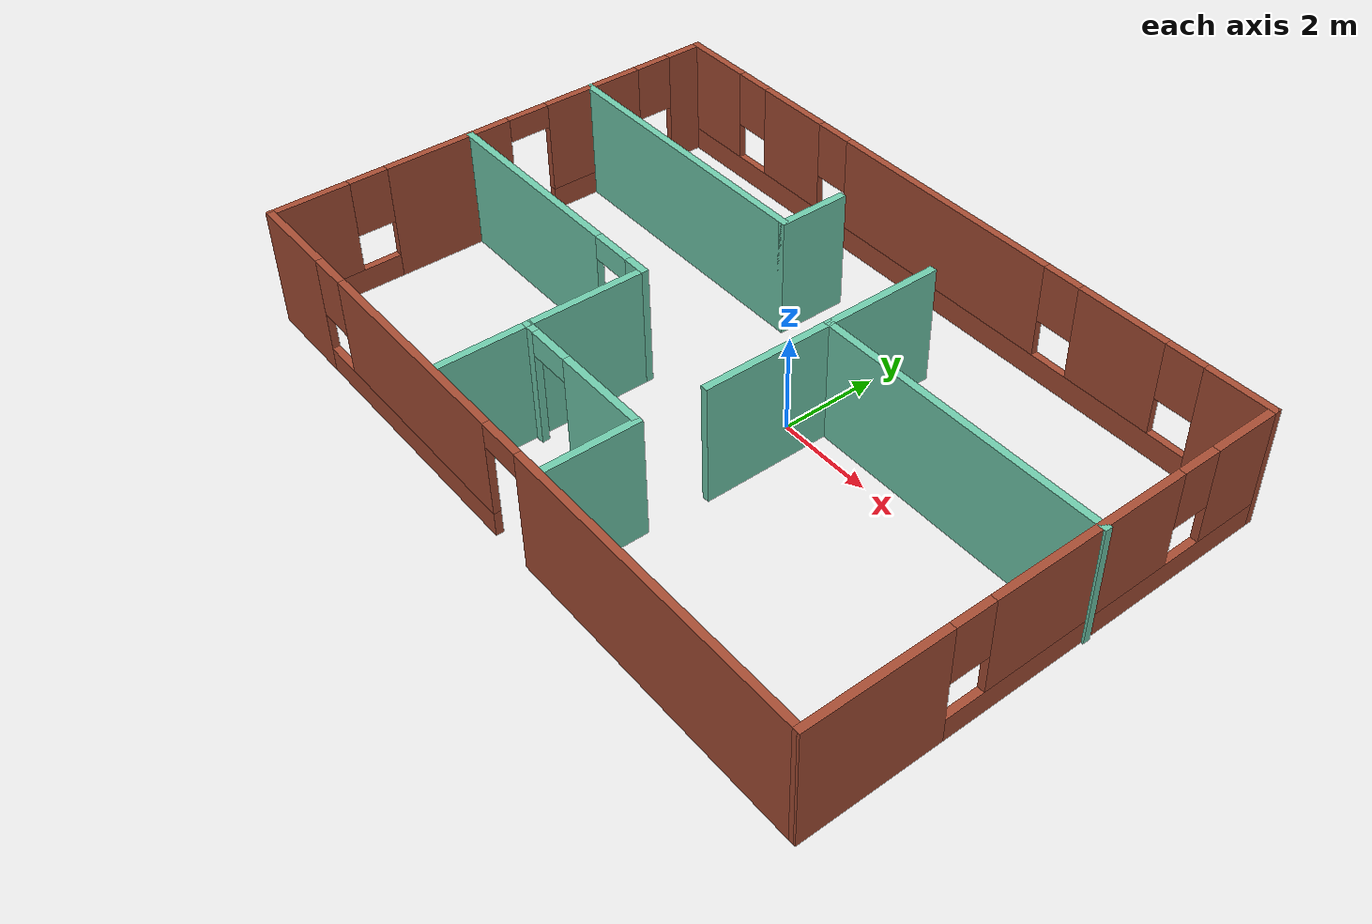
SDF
<?xml version='1.0'?>
<sdf version='1.6'>
  <model name='buildingV1'>
    <pose frame=''>-0.82447 -0.485176 0 0 -0 0</pose>
    <link name='Wall_22'>
      <pose frame=''>-7.44478 0 0 0 0 -1.57075</pose>
      <visual name='Wall_22_Visual_0'>
        <pose frame=''>-4.55966 0 1.25 0 -0 0</pose>
        <geometry>
          <box>
            <size>0.881202 0.15 2.5</size>
          </box>
        </geometry>
        <material>
          <script>
            <uri>file://media/materials/scripts/gazebo.material</uri>
            <name>Gazebo/Bricks</name>
          </script>
          <ambient>0.435294 0.796078 0.67451 1</ambient>
        </material>
        <meta>
          <layer>0</layer>
        </meta>
      </visual>
      <collision name='Wall_22_Collision_0'>
        <geometry>
          <box>
            <size>0.881202 0.15 2.5</size>
          </box>
        </geometry>
        <pose frame=''>-4.55966 0 1.25 0 -0 0</pose>
      </collision>
      <visual name='Wall_22_Visual_1'>
        <pose frame=''>1.18623 0 1.25 0 -0 0</pose>
        <geometry>
          <box>
            <size>2.73935 0.15 2.5</size>
          </box>
        </geometry>
        <material>
          <script>
            <uri>file://media/materials/scripts/gazebo.material</uri>
            <name>Gazebo/Bricks</name>
          </script>
          <ambient>0.435294 0.796078 0.67451 1</ambient>
        </material>
        <meta>
          <layer>0</layer>
        </meta>
      </visual>
      <collision name='Wall_22_Collision_1'>
        <geometry>
          <box>
            <size>2.73935 0.15 2.5</size>
          </box>
        </geometry>
        <pose frame=''>1.18623 0 1.25 0 -0 0</pose>
      </collision>
      <visual name='Wall_22_Visual_2'>
        <pose frame=''>-2.60125 0 0.25 0 -0 0</pose>
        <geometry>
          <box>
            <size>3.03561 0.15 0.5</size>
          </box>
        </geometry>
        <material>
          <script>
            <uri>file://media/materials/scripts/gazebo.material</uri>
            <name>Gazebo/Bricks</name>
          </script>
          <ambient>0.435294 0.796078 0.67451 1</ambient>
        </material>
        <meta>
          <layer>0</layer>
        </meta>
      </visual>
      <collision name='Wall_22_Collision_2'>
        <geometry>
          <box>
            <size>3.03561 0.15 0.5</size>
          </box>
        </geometry>
        <pose frame=''>-2.60125 0 0.25 0 -0 0</pose>
      </collision>
      <visual name='Wall_22_Visual_3'>
        <pose frame=''>3.77808 0 0.25 0 -0 0</pose>
        <geometry>
          <box>
            <size>2.44435 0.15 0.5</size>
          </box>
        </geometry>
        <material>
          <script>
            <uri>file://media/materials/scripts/gazebo.material</uri>
            <name>Gazebo/Bricks</name>
          </script>
          <ambient>0.435294 0.796078 0.67451 1</ambient>
        </material>
        <meta>
          <layer>0</layer>
        </meta>
      </visual>
      <collision name='Wall_22_Collision_3'>
        <geometry>
          <box>
            <size>2.44435 0.15 0.5</size>
          </box>
        </geometry>
        <pose frame=''>3.77808 0 0.25 0 -0 0</pose>
      </collision>
      <visual name='Wall_22_Visual_4'>
        <pose frame=''>-2.20125 0 1.5 0 -0 0</pose>
        <geometry>
          <box>
            <size>2.23561 0.15 2</size>
          </box>
        </geometry>
        <material>
          <script>
            <uri>file://media/materials/scripts/gazebo.material</uri>
            <name>Gazebo/Bricks</name>
          </script>
          <ambient>0.435294 0.796078 0.67451 1</ambient>
        </material>
        <meta>
          <layer>0</layer>
        </meta>
      </visual>
      <collision name='Wall_22_Collision_4'>
        <geometry>
          <box>
            <size>2.23561 0.15 2</size>
          </box>
        </geometry>
        <pose frame=''>-2.20125 0 1.5 0 -0 0</pose>
      </collision>
      <visual name='Wall_22_Visual_5'>
        <pose frame=''>-2.20125 0 1.5 0 -0 0</pose>
        <geometry>
          <box>
            <size>2.23561 0.15 2</size>
          </box>
        </geometry>
        <material>
          <script>
            <uri>file://media/materials/scripts/gazebo.material</uri>
            <name>Gazebo/Bricks</name>
          </script>
          <ambient>0.435294 0.796078 0.67451 1</ambient>
        </material>
        <meta>
          <layer>0</layer>
        </meta>
      </visual>
      <collision name='Wall_22_Collision_5'>
        <geometry>
          <box>
            <size>2.23561 0.15 2</size>
          </box>
        </geometry>
        <pose frame=''>-2.20125 0 1.5 0 -0 0</pose>
      </collision>
      <visual name='Wall_22_Visual_6'>
        <pose frame=''>4.17808 0 1.5 0 -0 0</pose>
        <geometry>
          <box>
            <size>1.64434 0.15 2</size>
          </box>
        </geometry>
        <material>
          <script>
            <uri>file://media/materials/scripts/gazebo.material</uri>
            <name>Gazebo/Bricks</name>
          </script>
          <ambient>0.435294 0.796078 0.67451 1</ambient>
        </material>
        <meta>
          <layer>0</layer>
        </meta>
      </visual>
      <collision name='Wall_22_Collision_6'>
        <geometry>
          <box>
            <size>1.64434 0.15 2</size>
          </box>
        </geometry>
        <pose frame=''>4.17808 0 1.5 0 -0 0</pose>
      </collision>
      <visual name='Wall_22_Visual_7'>
        <pose frame=''>-3.71905 0 1.9 0 -0 0</pose>
        <geometry>
          <box>
            <size>0.8 0.15 1.2</size>
          </box>
        </geometry>
        <material>
          <script>
            <uri>file://media/materials/scripts/gazebo.material</uri>
            <name>Gazebo/Bricks</name>
          </script>
          <ambient>0.435294 0.796078 0.67451 1</ambient>
        </material>
        <meta>
          <layer>0</layer>
        </meta>
      </visual>
      <collision name='Wall_22_Collision_7'>
        <geometry>
          <box>
            <size>0.8 0.15 1.2</size>
          </box>
        </geometry>
        <pose frame=''>-3.71905 0 1.9 0 -0 0</pose>
      </collision>
      <visual name='Wall_22_Visual_8'>
        <pose frame=''>2.95591 0 1.9 0 -0 0</pose>
        <geometry>
          <box>
            <size>0.8 0.15 1.2</size>
          </box>
        </geometry>
        <material>
          <script>
            <uri>file://media/materials/scripts/gazebo.material</uri>
            <name>Gazebo/Bricks</name>
          </script>
          <ambient>0.435294 0.796078 0.67451 1</ambient>
        </material>
        <meta>
          <layer>0</layer>
        </meta>
      </visual>
      <collision name='Wall_22_Collision_8'>
        <geometry>
          <box>
            <size>0.8 0.15 1.2</size>
          </box>
        </geometry>
        <pose frame=''>2.95591 0 1.9 0 -0 0</pose>
      </collision>
      <visual name='Wall_22_Visual_9'>
        <pose frame=''>-0.633441 0 2.25 0 -0 0</pose>
        <geometry>
          <box>
            <size>0.9 0.15 0.5</size>
          </box>
        </geometry>
        <material>
          <script>
            <uri>file://media/materials/scripts/gazebo.material</uri>
            <name>Gazebo/Bricks</name>
          </script>
          <ambient>0.435294 0.796078 0.67451 1</ambient>
        </material>
        <meta>
          <layer>0</layer>
        </meta>
      </visual>
      <collision name='Wall_22_Collision_9'>
        <geometry>
          <box>
            <size>0.9 0.15 0.5</size>
          </box>
        </geometry>
        <pose frame=''>-0.633441 0 2.25 0 -0 0</pose>
      </collision>
      <visual name='Wall_22_Visual_10'>
        <pose frame=''>-0.633441 0 2.25 0 -0 0</pose>
        <geometry>
          <box>
            <size>0.9 0.15 0.5</size>
          </box>
        </geometry>
        <material>
          <script>
            <uri>file://media/materials/scripts/gazebo.material</uri>
            <name>Gazebo/Bricks</name>
          </script>
          <ambient>0.435294 0.796078 0.67451 1</ambient>
        </material>
        <meta>
          <layer>0</layer>
        </meta>
      </visual>
      <collision name='Wall_22_Collision_10'>
        <geometry>
          <box>
            <size>0.9 0.15 0.5</size>
          </box>
        </geometry>
        <pose frame=''>-0.633441 0 2.25 0 -0 0</pose>
      </collision>
    </link>
    <link name='Wall_23'>
      <pose frame=''>-0.01953 -4.92526 0 0 -0 0</pose>
      <visual name='Wall_23_Visual_0'>
        <pose frame=''>-6.54805 0 1.25 0 -0 0</pose>
        <geometry>
          <box>
            <size>1.9039 0.15 2.5</size>
          </box>
        </geometry>
        <material>
          <script>
            <uri>file://media/materials/scripts/gazebo.material</uri>
            <name>Gazebo/Bricks</name>
          </script>
          <ambient>0.435294 0.796078 0.67451 1</ambient>
        </material>
        <meta>
          <layer>0</layer>
        </meta>
      </visual>
      <collision name='Wall_23_Collision_0'>
        <geometry>
          <box>
            <size>1.9039 0.15 2.5</size>
          </box>
        </geometry>
        <pose frame=''>-6.54805 0 1.25 0 -0 0</pose>
      </collision>
      <visual name='Wall_23_Visual_1'>
        <pose frame=''>4.13151 0 1.25 0 -0 0</pose>
        <geometry>
          <box>
            <size>6.73697 0.15 2.5</size>
          </box>
        </geometry>
        <material>
          <script>
            <uri>file://media/materials/scripts/gazebo.material</uri>
            <name>Gazebo/Bricks</name>
          </script>
          <ambient>0.435294 0.796078 0.67451 1</ambient>
        </material>
        <meta>
          <layer>0</layer>
        </meta>
      </visual>
      <collision name='Wall_23_Collision_1'>
        <geometry>
          <box>
            <size>6.73697 0.15 2.5</size>
          </box>
        </geometry>
        <pose frame=''>4.13151 0 1.25 0 -0 0</pose>
      </collision>
      <visual name='Wall_23_Visual_2'>
        <pose frame=''>-2.86654 0 0.25 0 -0 0</pose>
        <geometry>
          <box>
            <size>5.45913 0.15 0.5</size>
          </box>
        </geometry>
        <material>
          <script>
            <uri>file://media/materials/scripts/gazebo.material</uri>
            <name>Gazebo/Bricks</name>
          </script>
          <ambient>0.435294 0.796078 0.67451 1</ambient>
        </material>
        <meta>
          <layer>0</layer>
        </meta>
      </visual>
      <collision name='Wall_23_Collision_2'>
        <geometry>
          <box>
            <size>5.45913 0.15 0.5</size>
          </box>
        </geometry>
        <pose frame=''>-2.86654 0 0.25 0 -0 0</pose>
      </collision>
      <visual name='Wall_23_Visual_3'>
        <pose frame=''>-2.46654 0 1.5 0 -0 0</pose>
        <geometry>
          <box>
            <size>4.65913 0.15 2</size>
          </box>
        </geometry>
        <material>
          <script>
            <uri>file://media/materials/scripts/gazebo.material</uri>
            <name>Gazebo/Bricks</name>
          </script>
          <ambient>0.435294 0.796078 0.67451 1</ambient>
        </material>
        <meta>
          <layer>0</layer>
        </meta>
      </visual>
      <collision name='Wall_23_Collision_3'>
        <geometry>
          <box>
            <size>4.65913 0.15 2</size>
          </box>
        </geometry>
        <pose frame=''>-2.46654 0 1.5 0 -0 0</pose>
      </collision>
      <visual name='Wall_23_Visual_4'>
        <pose frame=''>-5.1961 0 1.9 0 -0 0</pose>
        <geometry>
          <box>
            <size>0.8 0.15 1.2</size>
          </box>
        </geometry>
        <material>
          <script>
            <uri>file://media/materials/scripts/gazebo.material</uri>
            <name>Gazebo/Bricks</name>
          </script>
          <ambient>0.435294 0.796078 0.67451 1</ambient>
        </material>
        <meta>
          <layer>0</layer>
        </meta>
      </visual>
      <collision name='Wall_23_Collision_4'>
        <geometry>
          <box>
            <size>0.8 0.15 1.2</size>
          </box>
        </geometry>
        <pose frame=''>-5.1961 0 1.9 0 -0 0</pose>
      </collision>
      <visual name='Wall_23_Visual_5'>
        <pose frame=''>0.313028 0 2.25 0 -0 0</pose>
        <geometry>
          <box>
            <size>0.9 0.15 0.5</size>
          </box>
        </geometry>
        <material>
          <script>
            <uri>file://media/materials/scripts/gazebo.material</uri>
            <name>Gazebo/Bricks</name>
          </script>
          <ambient>0.435294 0.796078 0.67451 1</ambient>
        </material>
        <meta>
          <layer>0</layer>
        </meta>
      </visual>
      <collision name='Wall_23_Collision_5'>
        <geometry>
          <box>
            <size>0.9 0.15 0.5</size>
          </box>
        </geometry>
        <pose frame=''>0.313028 0 2.25 0 -0 0</pose>
      </collision>
    </link>
    <link name='Wall_24'>
      <pose frame=''>7.40522 -0.000216 0 0 -0 1.57085</pose>
      <visual name='Wall_24_Visual_0'>
        <pose frame=''>-3.58137 0 1.25 0 -0 0</pose>
        <geometry>
          <box>
            <size>2.83735 0.15 2.5</size>
          </box>
        </geometry>
        <material>
          <script>
            <uri>file://media/materials/scripts/gazebo.material</uri>
            <name>Gazebo/Bricks</name>
          </script>
          <ambient>0.435294 0.796078 0.67451 1</ambient>
        </material>
        <meta>
          <layer>0</layer>
        </meta>
      </visual>
      <collision name='Wall_24_Collision_0'>
        <geometry>
          <box>
            <size>2.83735 0.15 2.5</size>
          </box>
        </geometry>
        <pose frame=''>-3.58137 0 1.25 0 -0 0</pose>
      </collision>
      <visual name='Wall_24_Visual_1'>
        <pose frame=''>1.41867 0 0.25 0 -0 0</pose>
        <geometry>
          <box>
            <size>7.16273 0.15 0.5</size>
          </box>
        </geometry>
        <material>
          <script>
            <uri>file://media/materials/scripts/gazebo.material</uri>
            <name>Gazebo/Bricks</name>
          </script>
          <ambient>0.435294 0.796078 0.67451 1</ambient>
        </material>
        <meta>
          <layer>0</layer>
        </meta>
      </visual>
      <collision name='Wall_24_Collision_1'>
        <geometry>
          <box>
            <size>7.16273 0.15 0.5</size>
          </box>
        </geometry>
        <pose frame=''>1.41867 0 0.25 0 -0 0</pose>
      </collision>
      <visual name='Wall_24_Visual_2'>
        <pose frame=''>0.659093 0 1.5 0 -0 0</pose>
        <geometry>
          <box>
            <size>4.04357 0.15 2</size>
          </box>
        </geometry>
        <material>
          <script>
            <uri>file://media/materials/scripts/gazebo.material</uri>
            <name>Gazebo/Bricks</name>
          </script>
          <ambient>0.435294 0.796078 0.67451 1</ambient>
        </material>
        <meta>
          <layer>0</layer>
        </meta>
      </visual>
      <collision name='Wall_24_Collision_2'>
        <geometry>
          <box>
            <size>4.04357 0.15 2</size>
          </box>
        </geometry>
        <pose frame=''>0.659093 0 1.5 0 -0 0</pose>
      </collision>
      <visual name='Wall_24_Visual_3'>
        <pose frame=''>4.24046 0 1.5 0 -0 0</pose>
        <geometry>
          <box>
            <size>1.51916 0.15 2</size>
          </box>
        </geometry>
        <material>
          <script>
            <uri>file://media/materials/scripts/gazebo.material</uri>
            <name>Gazebo/Bricks</name>
          </script>
          <ambient>0.435294 0.796078 0.67451 1</ambient>
        </material>
        <meta>
          <layer>0</layer>
        </meta>
      </visual>
      <collision name='Wall_24_Collision_3'>
        <geometry>
          <box>
            <size>1.51916 0.15 2</size>
          </box>
        </geometry>
        <pose frame=''>4.24046 0 1.5 0 -0 0</pose>
      </collision>
      <visual name='Wall_24_Visual_4'>
        <pose frame=''>-1.76269 0 1.9 0 -0 0</pose>
        <geometry>
          <box>
            <size>0.8 0.15 1.2</size>
          </box>
        </geometry>
        <material>
          <script>
            <uri>file://media/materials/scripts/gazebo.material</uri>
            <name>Gazebo/Bricks</name>
          </script>
          <ambient>0.435294 0.796078 0.67451 1</ambient>
        </material>
        <meta>
          <layer>0</layer>
        </meta>
      </visual>
      <collision name='Wall_24_Collision_4'>
        <geometry>
          <box>
            <size>0.8 0.15 1.2</size>
          </box>
        </geometry>
        <pose frame=''>-1.76269 0 1.9 0 -0 0</pose>
      </collision>
      <visual name='Wall_24_Visual_5'>
        <pose frame=''>3.08088 0 1.9 0 -0 0</pose>
        <geometry>
          <box>
            <size>0.8 0.15 1.2</size>
          </box>
        </geometry>
        <material>
          <script>
            <uri>file://media/materials/scripts/gazebo.material</uri>
            <name>Gazebo/Bricks</name>
          </script>
          <ambient>0.435294 0.796078 0.67451 1</ambient>
        </material>
        <meta>
          <layer>0</layer>
        </meta>
      </visual>
      <collision name='Wall_24_Collision_5'>
        <geometry>
          <box>
            <size>0.8 0.15 1.2</size>
          </box>
        </geometry>
        <pose frame=''>3.08088 0 1.9 0 -0 0</pose>
      </collision>
    </link>
    <link name='Wall_25'>
      <pose frame=''>-0.020025 4.92504 0 0 -0 3.14156</pose>
      <visual name='Wall_25_Visual_0'>
        <pose frame=''>-6.78709 0 1.25 0 -0 0</pose>
        <geometry>
          <box>
            <size>1.42582 0.15 2.5</size>
          </box>
        </geometry>
        <material>
          <script>
            <uri>file://media/materials/scripts/gazebo.material</uri>
            <name>Gazebo/Bricks</name>
          </script>
          <ambient>0.435294 0.796078 0.67451 1</ambient>
        </material>
        <meta>
          <layer>0</layer>
        </meta>
      </visual>
      <collision name='Wall_25_Collision_0'>
        <geometry>
          <box>
            <size>1.42582 0.15 2.5</size>
          </box>
        </geometry>
        <pose frame=''>-6.78709 0 1.25 0 -0 0</pose>
      </collision>
      <visual name='Wall_25_Visual_1'>
        <pose frame=''>0.712913 0 0.25 0 -0 0</pose>
        <geometry>
          <box>
            <size>13.5742 0.15 0.5</size>
          </box>
        </geometry>
        <material>
          <script>
            <uri>file://media/materials/scripts/gazebo.material</uri>
            <name>Gazebo/Bricks</name>
          </script>
          <ambient>0.435294 0.796078 0.67451 1</ambient>
        </material>
        <meta>
          <layer>0</layer>
        </meta>
      </visual>
      <collision name='Wall_25_Collision_1'>
        <geometry>
          <box>
            <size>13.5742 0.15 0.5</size>
          </box>
        </geometry>
        <pose frame=''>0.712913 0 0.25 0 -0 0</pose>
      </collision>
      <visual name='Wall_25_Visual_2'>
        <pose frame=''>-4.31757 0 1.5 0 -0 0</pose>
        <geometry>
          <box>
            <size>1.91322 0.15 2</size>
          </box>
        </geometry>
        <material>
          <script>
            <uri>file://media/materials/scripts/gazebo.material</uri>
            <name>Gazebo/Bricks</name>
          </script>
          <ambient>0.435294 0.796078 0.67451 1</ambient>
        </material>
        <meta>
          <layer>0</layer>
        </meta>
      </visual>
      <collision name='Wall_25_Collision_2'>
        <geometry>
          <box>
            <size>1.91322 0.15 2</size>
          </box>
        </geometry>
        <pose frame=''>-4.31757 0 1.5 0 -0 0</pose>
      </collision>
      <visual name='Wall_25_Visual_3'>
        <pose frame=''>0.031566 0 1.5 0 -0 0</pose>
        <geometry>
          <box>
            <size>5.18504 0.15 2</size>
          </box>
        </geometry>
        <material>
          <script>
            <uri>file://media/materials/scripts/gazebo.material</uri>
            <name>Gazebo/Bricks</name>
          </script>
          <ambient>0.435294 0.796078 0.67451 1</ambient>
        </material>
        <meta>
          <layer>0</layer>
        </meta>
      </visual>
      <collision name='Wall_25_Collision_3'>
        <geometry>
          <box>
            <size>5.18504 0.15 2</size>
          </box>
        </geometry>
        <pose frame=''>0.031566 0 1.5 0 -0 0</pose>
      </collision>
      <visual name='Wall_25_Visual_4'>
        <pose frame=''>4.26099 0 1.5 0 -0 0</pose>
        <geometry>
          <box>
            <size>1.67381 0.15 2</size>
          </box>
        </geometry>
        <material>
          <script>
            <uri>file://media/materials/scripts/gazebo.material</uri>
            <name>Gazebo/Bricks</name>
          </script>
          <ambient>0.435294 0.796078 0.67451 1</ambient>
        </material>
        <meta>
          <layer>0</layer>
        </meta>
      </visual>
      <collision name='Wall_25_Collision_4'>
        <geometry>
          <box>
            <size>1.67381 0.15 2</size>
          </box>
        </geometry>
        <pose frame=''>4.26099 0 1.5 0 -0 0</pose>
      </collision>
      <visual name='Wall_25_Visual_5'>
        <pose frame=''>6.69895 0 1.5 0 -0 0</pose>
        <geometry>
          <box>
            <size>1.6021 0.15 2</size>
          </box>
        </geometry>
        <material>
          <script>
            <uri>file://media/materials/scripts/gazebo.material</uri>
            <name>Gazebo/Bricks</name>
          </script>
          <ambient>0.435294 0.796078 0.67451 1</ambient>
        </material>
        <meta>
          <layer>0</layer>
        </meta>
      </visual>
      <collision name='Wall_25_Collision_5'>
        <geometry>
          <box>
            <size>1.6021 0.15 2</size>
          </box>
        </geometry>
        <pose frame=''>6.69895 0 1.5 0 -0 0</pose>
      </collision>
      <visual name='Wall_25_Visual_6'>
        <pose frame=''>-5.67417 0 1.9 0 -0 0</pose>
        <geometry>
          <box>
            <size>0.8 0.15 1.2</size>
          </box>
        </geometry>
        <material>
          <script>
            <uri>file://media/materials/scripts/gazebo.material</uri>
            <name>Gazebo/Bricks</name>
          </script>
          <ambient>0.435294 0.796078 0.67451 1</ambient>
        </material>
        <meta>
          <layer>0</layer>
        </meta>
      </visual>
      <collision name='Wall_25_Collision_6'>
        <geometry>
          <box>
            <size>0.8 0.15 1.2</size>
          </box>
        </geometry>
        <pose frame=''>-5.67417 0 1.9 0 -0 0</pose>
      </collision>
      <visual name='Wall_25_Visual_7'>
        <pose frame=''>-2.96096 0 1.9 0 -0 0</pose>
        <geometry>
          <box>
            <size>0.8 0.15 1.2</size>
          </box>
        </geometry>
        <material>
          <script>
            <uri>file://media/materials/scripts/gazebo.material</uri>
            <name>Gazebo/Bricks</name>
          </script>
          <ambient>0.435294 0.796078 0.67451 1</ambient>
        </material>
        <meta>
          <layer>0</layer>
        </meta>
      </visual>
      <collision name='Wall_25_Collision_7'>
        <geometry>
          <box>
            <size>0.8 0.15 1.2</size>
          </box>
        </geometry>
        <pose frame=''>-2.96096 0 1.9 0 -0 0</pose>
      </collision>
      <visual name='Wall_25_Visual_8'>
        <pose frame=''>3.02409 0 1.9 0 -0 0</pose>
        <geometry>
          <box>
            <size>0.8 0.15 1.2</size>
          </box>
        </geometry>
        <material>
          <script>
            <uri>file://media/materials/scripts/gazebo.material</uri>
            <name>Gazebo/Bricks</name>
          </script>
          <ambient>0.435294 0.796078 0.67451 1</ambient>
        </material>
        <meta>
          <layer>0</layer>
        </meta>
      </visual>
      <collision name='Wall_25_Collision_8'>
        <geometry>
          <box>
            <size>0.8 0.15 1.2</size>
          </box>
        </geometry>
        <pose frame=''>3.02409 0 1.9 0 -0 0</pose>
      </collision>
      <visual name='Wall_25_Visual_9'>
        <pose frame=''>5.4979 0 1.9 0 -0 0</pose>
        <geometry>
          <box>
            <size>0.8 0.15 1.2</size>
          </box>
        </geometry>
        <material>
          <script>
            <uri>file://media/materials/scripts/gazebo.material</uri>
            <name>Gazebo/Bricks</name>
          </script>
          <ambient>0.435294 0.796078 0.67451 1</ambient>
        </material>
        <meta>
          <layer>0</layer>
        </meta>
      </visual>
      <collision name='Wall_25_Collision_9'>
        <geometry>
          <box>
            <size>0.8 0.15 1.2</size>
          </box>
        </geometry>
        <pose frame=''>5.4979 0 1.9 0 -0 0</pose>
      </collision>
    </link>
    <link name='Wall_27'>
      <collision name='Wall_27_Collision'>
        <geometry>
          <box>
            <size>2 0.15 2.5</size>
          </box>
        </geometry>
        <pose frame=''>0 0 1.25 0 -0 0</pose>
      </collision>
      <visual name='Wall_27_Visual'>
        <pose frame=''>0 0 1.25 0 -0 0</pose>
        <geometry>
          <box>
            <size>2 0.15 2.5</size>
          </box>
        </geometry>
        <material>
          <script>
            <uri>file://media/materials/scripts/gazebo.material</uri>
            <name>Gazebo/Grey</name>
          </script>
          <ambient>0.435294 0.796078 0.67451 1</ambient>
        </material>
        <meta>
          <layer>0</layer>
        </meta>
      </visual>
      <pose frame=''>-1.80484 -3.98656 0 0 -0 1.5708</pose>
    </link>
    <link name='Wall_28'>
      <pose frame=''>-0.254843 -3.06156 0 0 -0 0</pose>
      <visual name='Wall_28_Visual_0'>
        <pose frame=''>-1.46591 0 1.25 0 -0 0</pose>
        <geometry>
          <box>
            <size>0.318179 0.15 2.5</size>
          </box>
        </geometry>
        <material>
          <script>
            <uri>file://media/materials/scripts/gazebo.material</uri>
            <name>Gazebo/Grey</name>
          </script>
          <ambient>0.435294 0.796078 0.67451 1</ambient>
        </material>
        <meta>
          <layer>0</layer>
        </meta>
      </visual>
      <collision name='Wall_28_Collision_0'>
        <geometry>
          <box>
            <size>0.318179 0.15 2.5</size>
          </box>
        </geometry>
        <pose frame=''>-1.46591 0 1.25 0 -0 0</pose>
      </collision>
      <visual name='Wall_28_Visual_1'>
        <pose frame=''>0.609089 0 1.25 0 -0 0</pose>
        <geometry>
          <box>
            <size>2.03182 0.15 2.5</size>
          </box>
        </geometry>
        <material>
          <script>
            <uri>file://media/materials/scripts/gazebo.material</uri>
            <name>Gazebo/Grey</name>
          </script>
          <ambient>0.435294 0.796078 0.67451 1</ambient>
        </material>
        <meta>
          <layer>0</layer>
        </meta>
      </visual>
      <collision name='Wall_28_Collision_1'>
        <geometry>
          <box>
            <size>2.03182 0.15 2.5</size>
          </box>
        </geometry>
        <pose frame=''>0.609089 0 1.25 0 -0 0</pose>
      </collision>
      <visual name='Wall_28_Visual_2'>
        <pose frame=''>-0.856821 0 2.25 0 -0 0</pose>
        <geometry>
          <box>
            <size>0.9 0.15 0.5</size>
          </box>
        </geometry>
        <material>
          <script>
            <uri>file://media/materials/scripts/gazebo.material</uri>
            <name>Gazebo/Grey</name>
          </script>
          <ambient>0.435294 0.796078 0.67451 1</ambient>
        </material>
        <meta>
          <layer>0</layer>
        </meta>
      </visual>
      <collision name='Wall_28_Collision_2'>
        <geometry>
          <box>
            <size>0.9 0.15 0.5</size>
          </box>
        </geometry>
        <pose frame=''>-0.856821 0 2.25 0 -0 0</pose>
      </collision>
    </link>
    <link name='Wall_29'>
      <collision name='Wall_29_Collision'>
        <geometry>
          <box>
            <size>2 0.15 2.5</size>
          </box>
        </geometry>
        <pose frame=''>0 0 1.25 0 -0 0</pose>
      </collision>
      <visual name='Wall_29_Visual'>
        <pose frame=''>0 0 1.25 0 -0 0</pose>
        <geometry>
          <box>
            <size>2 0.15 2.5</size>
          </box>
        </geometry>
        <material>
          <script>
            <uri>file://media/materials/scripts/gazebo.material</uri>
            <name>Gazebo/Grey</name>
          </script>
          <ambient>0.435294 0.796078 0.67451 1</ambient>
        </material>
        <meta>
          <layer>0</layer>
        </meta>
      </visual>
      <pose frame=''>1.29516 -3.98656 0 0 0 -1.5708</pose>
    </link>
    <link name='Wall_31'>
      <pose frame=''>-4.60484 -0.666194 0 0 -0 0</pose>
      <visual name='Wall_31_Visual_0'>
        <pose frame=''>-0.701734 0 1.25 0 -0 0</pose>
        <geometry>
          <box>
            <size>4.34653 0.15 2.5</size>
          </box>
        </geometry>
        <material>
          <script>
            <uri>file://media/materials/scripts/gazebo.material</uri>
            <name>Gazebo/Grey</name>
          </script>
          <ambient>0.435294 0.796078 0.67451 1</ambient>
        </material>
        <meta>
          <layer>0</layer>
        </meta>
      </visual>
      <collision name='Wall_31_Collision_0'>
        <geometry>
          <box>
            <size>4.34653 0.15 2.5</size>
          </box>
        </geometry>
        <pose frame=''>-0.701734 0 1.25 0 -0 0</pose>
      </collision>
      <visual name='Wall_31_Visual_1'>
        <pose frame=''>2.62327 0 1.25 0 -0 0</pose>
        <geometry>
          <box>
            <size>0.503469 0.15 2.5</size>
          </box>
        </geometry>
        <material>
          <script>
            <uri>file://media/materials/scripts/gazebo.material</uri>
            <name>Gazebo/Grey</name>
          </script>
          <ambient>0.435294 0.796078 0.67451 1</ambient>
        </material>
        <meta>
          <layer>0</layer>
        </meta>
      </visual>
      <collision name='Wall_31_Collision_1'>
        <geometry>
          <box>
            <size>0.503469 0.15 2.5</size>
          </box>
        </geometry>
        <pose frame=''>2.62327 0 1.25 0 -0 0</pose>
      </collision>
      <visual name='Wall_31_Visual_2'>
        <pose frame=''>1.92153 0 2.25 0 -0 0</pose>
        <geometry>
          <box>
            <size>0.9 0.15 0.5</size>
          </box>
        </geometry>
        <material>
          <script>
            <uri>file://media/materials/scripts/gazebo.material</uri>
            <name>Gazebo/Grey</name>
          </script>
          <ambient>0.435294 0.796078 0.67451 1</ambient>
        </material>
        <meta>
          <layer>0</layer>
        </meta>
      </visual>
      <collision name='Wall_31_Collision_2'>
        <geometry>
          <box>
            <size>0.9 0.15 0.5</size>
          </box>
        </geometry>
        <pose frame=''>1.92153 0 2.25 0 -0 0</pose>
      </collision>
    </link>
    <link name='Wall_32'>
      <collision name='Wall_32_Collision'>
        <geometry>
          <box>
            <size>2.53781 0.15 2.5</size>
          </box>
        </geometry>
        <pose frame=''>0 0 1.25 0 -0 0</pose>
      </collision>
      <visual name='Wall_32_Visual'>
        <pose frame=''>0 0 1.25 0 -0 0</pose>
        <geometry>
          <box>
            <size>2.53781 0.15 2.5</size>
          </box>
        </geometry>
        <material>
          <script>
            <uri>file://media/materials/scripts/gazebo.material</uri>
            <name>Gazebo/Grey</name>
          </script>
          <ambient>0.435294 0.796078 0.67451 1</ambient>
        </material>
        <meta>
          <layer>0</layer>
        </meta>
      </visual>
      <pose frame=''>-1.80484 -1.86766 0 0 0 -1.5708</pose>
    </link>
    <link name='Wall_36'>
      <collision name='Wall_36_Collision'>
        <geometry>
          <box>
            <size>6.25 0.15 2.5</size>
          </box>
        </geometry>
        <pose frame=''>0 0 1.25 0 -0 0</pose>
      </collision>
      <visual name='Wall_36_Visual'>
        <pose frame=''>0 0 1.25 0 -0 0</pose>
        <geometry>
          <box>
            <size>6.25 0.15 2.5</size>
          </box>
        </geometry>
        <material>
          <script>
            <uri>file://media/materials/scripts/gazebo.material</uri>
            <name>Gazebo/Grey</name>
          </script>
          <ambient>0.435294 0.796078 0.67451 1</ambient>
        </material>
        <meta>
          <layer>0</layer>
        </meta>
      </visual>
      <pose frame=''>4.39872 0.898449 0 0 -0 3.14159</pose>
    </link>
    <link name='Wall_37'>
      <collision name='Wall_37_Collision'>
        <geometry>
          <box>
            <size>2.5 0.15 2.5</size>
          </box>
        </geometry>
        <pose frame=''>0 0 1.25 0 -0 0</pose>
      </collision>
      <visual name='Wall_37_Visual'>
        <pose frame=''>0 0 1.25 0 -0 0</pose>
        <geometry>
          <box>
            <size>2.5 0.15 2.5</size>
          </box>
        </geometry>
        <material>
          <script>
            <uri>file://media/materials/scripts/gazebo.material</uri>
            <name>Gazebo/Grey</name>
          </script>
          <ambient>0.435294 0.796078 0.67451 1</ambient>
        </material>
        <meta>
          <layer>0</layer>
        </meta>
      </visual>
      <pose frame=''>1.34872 2.07345 0 0 -0 1.5708</pose>
    </link>
    <link name='Wall_39'>
      <collision name='Wall_39_Collision'>
        <geometry>
          <box>
            <size>2.75 0.15 2.5</size>
          </box>
        </geometry>
        <pose frame=''>0 0 1.25 0 -0 0</pose>
      </collision>
      <visual name='Wall_39_Visual'>
        <pose frame=''>0 0 1.25 0 -0 0</pose>
        <geometry>
          <box>
            <size>2.75 0.15 2.5</size>
          </box>
        </geometry>
        <material>
          <script>
            <uri>file://media/materials/scripts/gazebo.material</uri>
            <name>Gazebo/Grey</name>
          </script>
          <ambient>0.435294 0.796078 0.67451 1</ambient>
        </material>
        <meta>
          <layer>0</layer>
        </meta>
      </visual>
      <pose frame=''>1.34872 -0.401551 0 0 0 -1.5708</pose>
    </link>
    <link name='Wall_41'>
      <collision name='Wall_41_Collision'>
        <geometry>
          <box>
            <size>6.25 0.15 2.5</size>
          </box>
        </geometry>
        <pose frame=''>0 0 1.25 0 -0 0</pose>
      </collision>
      <visual name='Wall_41_Visual'>
        <pose frame=''>0 0 1.25 0 -0 0</pose>
        <geometry>
          <box>
            <size>6.25 0.15 2.5</size>
          </box>
        </geometry>
        <material>
          <script>
            <uri>file://media/materials/scripts/gazebo.material</uri>
            <name>Gazebo/Grey</name>
          </script>
          <ambient>0.435294 0.796078 0.67451 1</ambient>
        </material>
        <meta>
          <layer>0</layer>
        </meta>
      </visual>
      <pose frame=''>-4.39872 2.18324 0 0 -0 0</pose>
    </link>
    <link name='Wall_42'>
      <collision name='Wall_42_Collision'>
        <geometry>
          <box>
            <size>1.5 0.15 2.5</size>
          </box>
        </geometry>
        <pose frame=''>0 0 1.25 0 -0 0</pose>
      </collision>
      <visual name='Wall_42_Visual'>
        <pose frame=''>0 0 1.25 0 -0 0</pose>
        <geometry>
          <box>
            <size>1.5 0.15 2.5</size>
          </box>
        </geometry>
        <material>
          <script>
            <uri>file://media/materials/scripts/gazebo.material</uri>
            <name>Gazebo/Grey</name>
          </script>
          <ambient>0.435294 0.796078 0.67451 1</ambient>
        </material>
        <meta>
          <layer>0</layer>
        </meta>
      </visual>
      <pose frame=''>-1.34872 2.85824 0 0 -0 1.5708</pose>
    </link>
    <static>1</static>
  </model>
</sdf>
